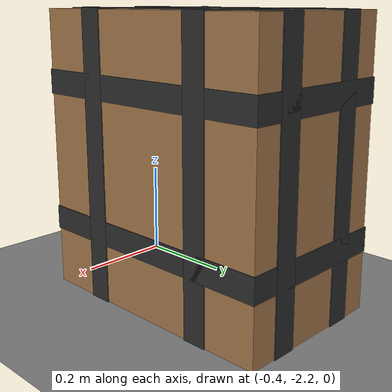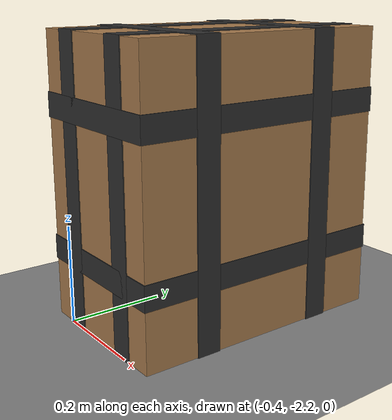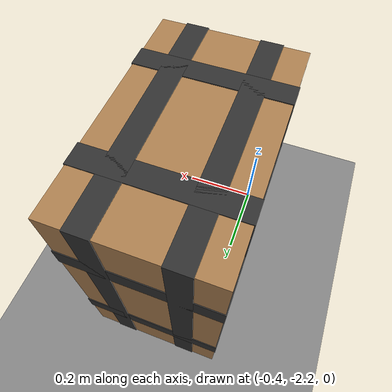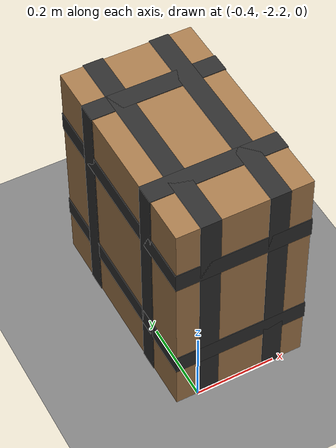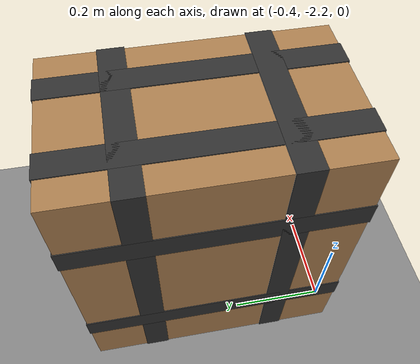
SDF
<sdf version="1.9">
 <world name="ecps295_lowbox_s45_monitor">
  <model name="ground_plane">
   <static>true</static>
   <link name="link">
    <collision name="collision">
     <geometry><plane><normal>0 0 1</normal><size>50 50</size></plane></geometry>
    </collision>
    <visual name="visual">
     <geometry><plane><normal>0 0 1</normal><size>50 50</size></plane></geometry>
     <material><ambient>0.5 0.5 0.5 1</ambient><diffuse>0.5 0.5 0.5 1</diffuse></material>
    </visual>
   </link>
  </model>
  <model name="lb5">
   <static>true</static>
   <pose>-0.29 -1.93 0.29 0 0 0</pose>
   <link name="link">
    <collision name="c"><geometry><box><size>0.33 0.54 0.58</size></box></geometry></collision>
    <visual name="v">
     <geometry><box><size>0.33 0.54 0.58</size></box></geometry>
     <material><ambient>0.65 0.48 0.30 1</ambient><diffuse>0.65 0.48 0.30 1</diffuse></material>
    </visual>
    <visual name="tape_ring0">
     <pose>0.000 0.000 -0.145 0 0 0</pose>
     <geometry><box><size>0.334 0.544 0.050</size></box></geometry>
     <material><ambient>0.18 0.18 0.18 1</ambient><diffuse>0.18 0.18 0.18 1</diffuse></material>
    </visual>
    <visual name="tape_bx0">
     <pose>-0.083 0.000 0.000 0 0 0</pose>
     <geometry><box><size>0.050 0.544 0.584</size></box></geometry>
     <material><ambient>0.18 0.18 0.18 1</ambient><diffuse>0.18 0.18 0.18 1</diffuse></material>
    </visual>
    <visual name="tape_by0">
     <pose>0.000 -0.135 0.000 0 0 0</pose>
     <geometry><box><size>0.334 0.050 0.584</size></box></geometry>
     <material><ambient>0.18 0.18 0.18 1</ambient><diffuse>0.18 0.18 0.18 1</diffuse></material>
    </visual>
    <visual name="tape_ring1">
     <pose>0.000 0.000 0.145 0 0 0</pose>
     <geometry><box><size>0.334 0.544 0.050</size></box></geometry>
     <material><ambient>0.18 0.18 0.18 1</ambient><diffuse>0.18 0.18 0.18 1</diffuse></material>
    </visual>
    <visual name="tape_bx1">
     <pose>0.083 0.000 0.000 0 0 0</pose>
     <geometry><box><size>0.050 0.544 0.584</size></box></geometry>
     <material><ambient>0.18 0.18 0.18 1</ambient><diffuse>0.18 0.18 0.18 1</diffuse></material>
    </visual>
    <visual name="tape_by1">
     <pose>0.000 0.135 0.000 0 0 0</pose>
     <geometry><box><size>0.334 0.050 0.584</size></box></geometry>
     <material><ambient>0.18 0.18 0.18 1</ambient><diffuse>0.18 0.18 0.18 1</diffuse></material>
    </visual>
   </link>
  </model>
 </world>
</sdf>
